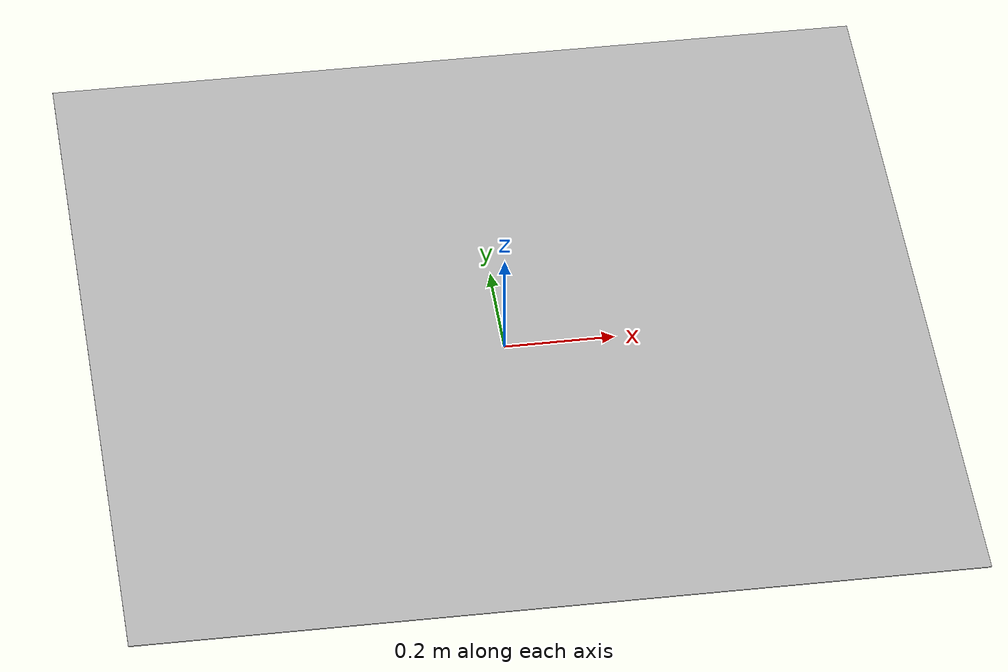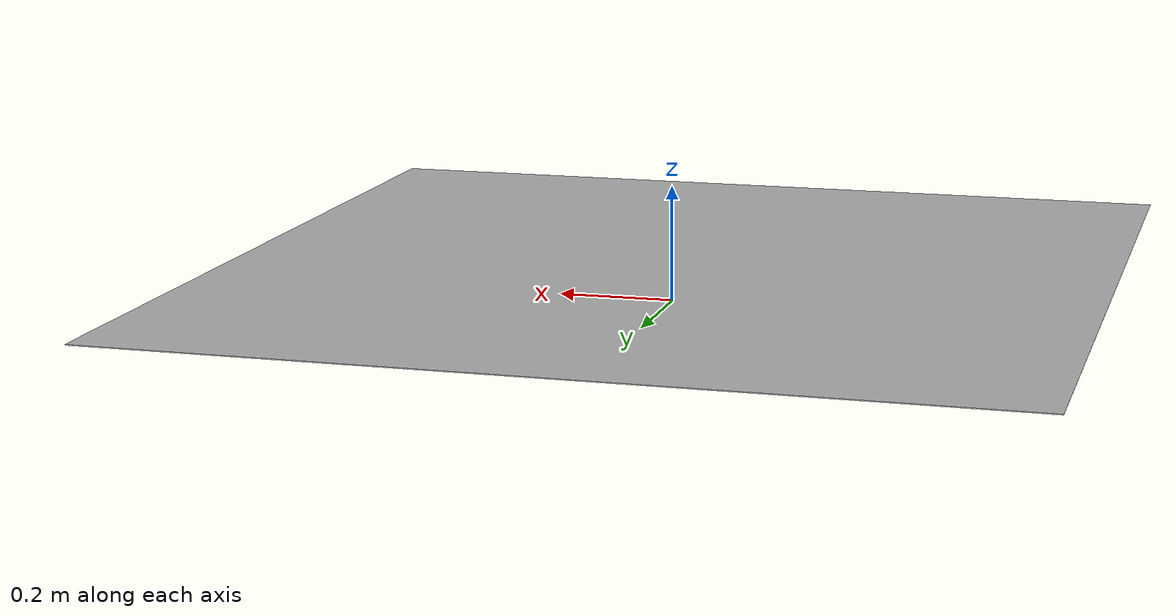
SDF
<?xml version="1.0" encoding="UTF-8"?>
<sdf version="1.4">
   <model name="ARtag6">
      <static>true</static>
      <pose>0 0 0.06 0 0 0</pose>
      <link name="link">
         <collision name="collision">
            <geometry>
               <plane>
                  <normal>0 0 1</normal>
                  <size>1.5 1.5</size>
               </plane>
            </geometry>
            <surface>
               <friction>
                  <ode>
                     <mu>100</mu>
                     <mu2>50</mu2>
                  </ode>
               </friction>
            </surface>
         </collision>
         <visual name="visual">
            <cast_shadows>false</cast_shadows>
            <geometry>
               <plane>
                  <normal>0 0 1</normal>
                  <size>1.5 1.5</size>
               </plane>
            </geometry>
            <material>
               <script>
                  <uri>model://ARtag6/materials/scripts</uri>
                  <uri>model://ARtag6/materials/textures/</uri>
                  <name>ARtag6/Image</name>
               </script>
            </material>
         </visual>
      </link>
   </model>
</sdf>
